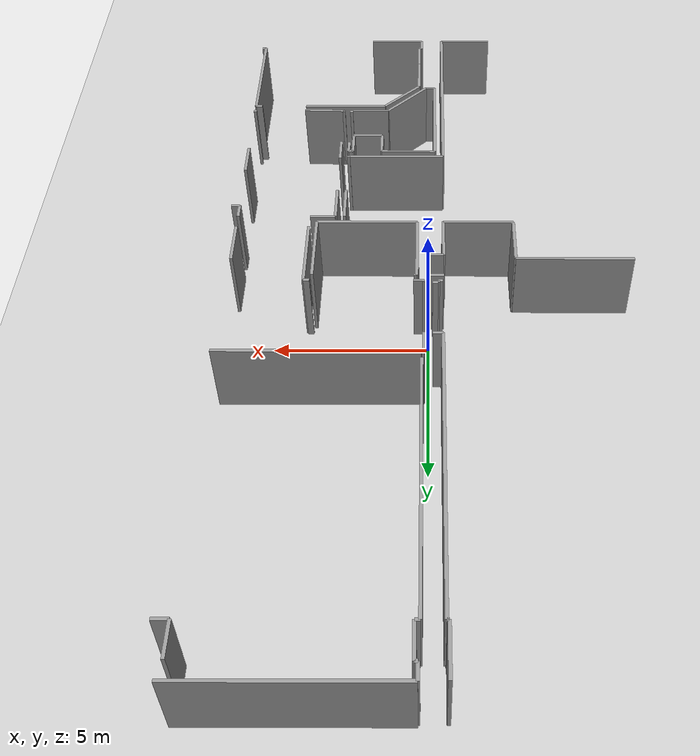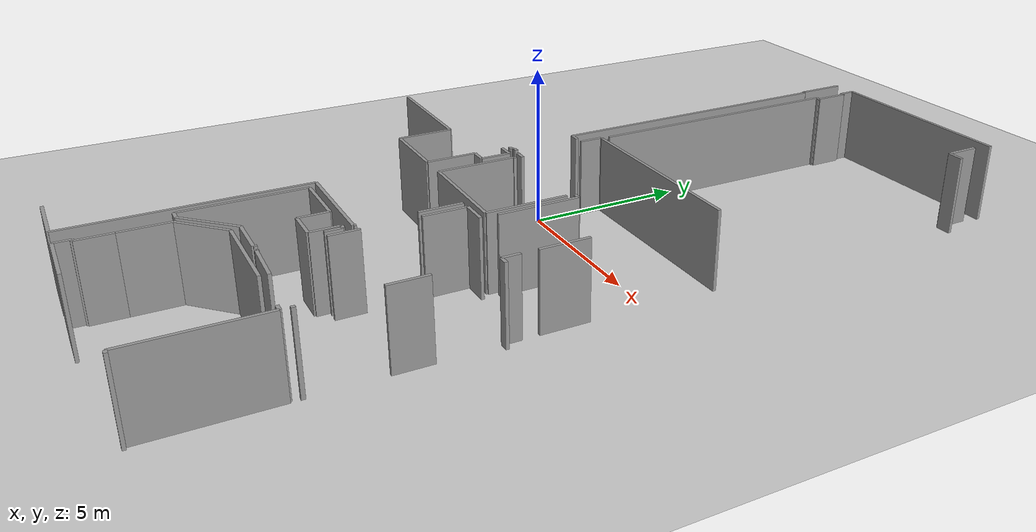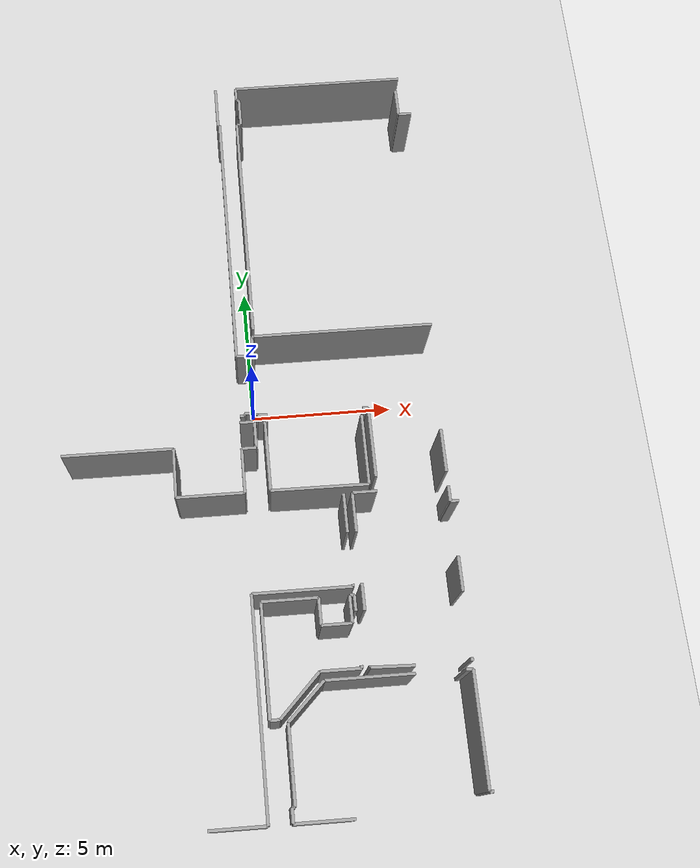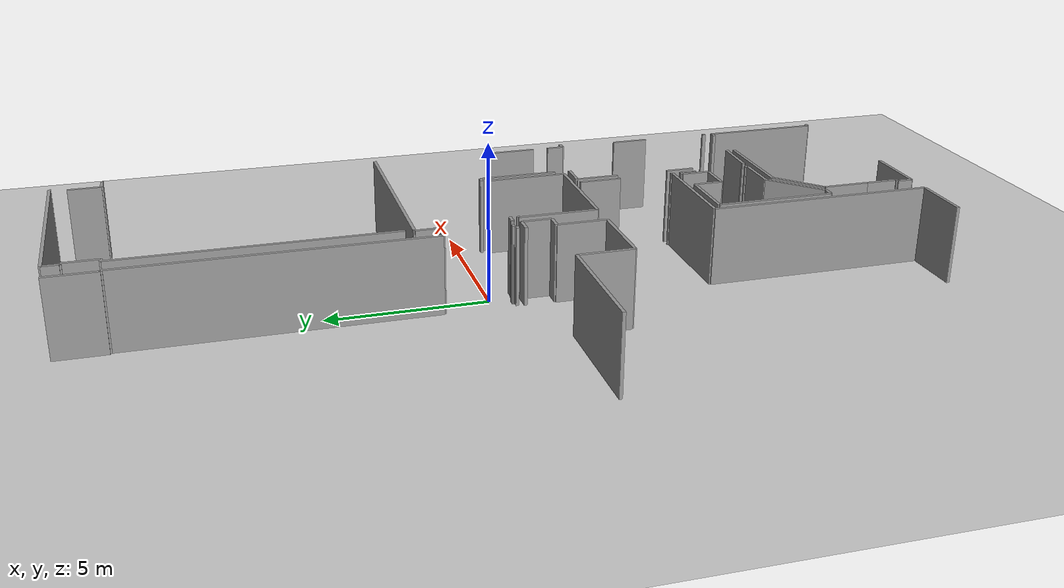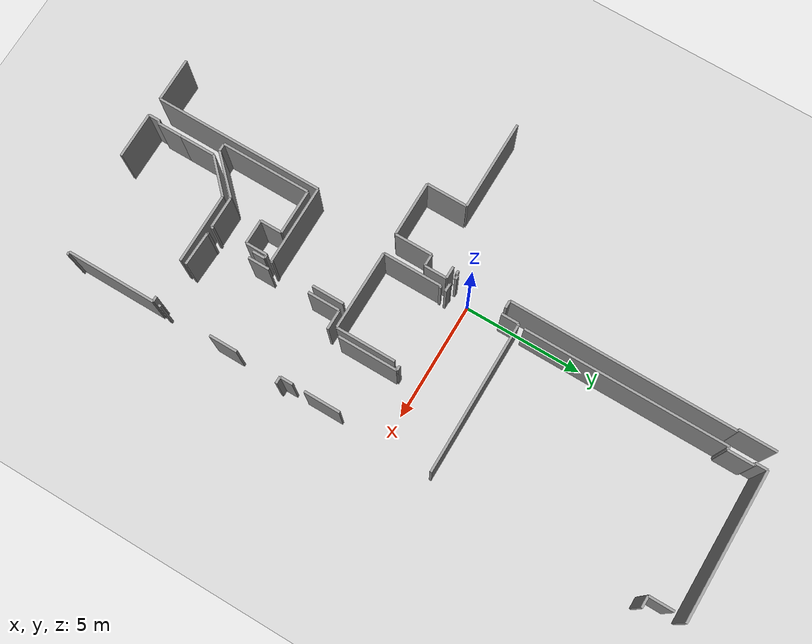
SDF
<sdf version="1.6">
 <world name="default">
  <model name="ground_plane">
   <static>1</static>
   <link name="link">
    <collision name="collision">
     <geometry><plane><normal>0 0 1</normal><size>100 100</size></plane></geometry>
     <surface><friction><ode><mu>100</mu><mu2>50</mu2></ode></friction></surface>
    </collision>
    <visual name="visual">
     <cast_shadows>0</cast_shadows>
     <geometry><plane><normal>0 0 1</normal><size>100 100</size></plane></geometry>
     <material>
      <script><uri>file://media/materials/scripts/gazebo.material</uri><name>Gazebo/Grey</name></script>
     </material>
    </visual>
   </link>
  </model>
  <model name="0510040942_A-40">
   <static>1</static>
   <link name="Wall_71">
    <collision name="Wall_71_Collision">
     <geometry><box><size>1.58557164064 0.1 2.5</size></box></geometry>
     <pose>0.792785820318 0 1.25 0 0 0</pose>
    </collision>
    <visual name="Wall_71_Visual">
     <pose>0.792785820318 0 1.25 0 0 0</pose>
     <geometry><box><size>1.58557164064 0.1 2.5</size></box></geometry>
     <material>
      <script><uri>file://media/materials/scripts/gazebo.material</uri><name>Gazebo/Grey</name></script>
      <ambient>1 1 1 1</ambient>
     </material>
    </visual>
    <pose>58.1242625322 -0.0121801134273 0 0 0 -1.57079632679</pose>
   </link>
   <link name="Wall_72">
    <collision name="Wall_72_Collision">
     <geometry><box><size>0.064326224038 0.1 2.5</size></box></geometry>
     <pose>0.032163112019 0 1.25 0 0 0</pose>
    </collision>
    <visual name="Wall_72_Visual">
     <pose>0.032163112019 0 1.25 0 0 0</pose>
     <geometry><box><size>0.064326224038 0.1 2.5</size></box></geometry>
     <material>
      <script><uri>file://media/materials/scripts/gazebo.material</uri><name>Gazebo/Grey</name></script>
      <ambient>1 1 1 1</ambient>
     </material>
    </visual>
    <pose>58.1242625322 -1.59775175406 0 0 0 0.0</pose>
   </link>
   <link name="Wall_73">
    <collision name="Wall_73_Collision">
     <geometry><box><size>9.51063856782 0.1 2.5</size></box></geometry>
     <pose>4.75531928391 0 1.25 0 0 0</pose>
    </collision>
    <visual name="Wall_73_Visual">
     <pose>4.75531928391 0 1.25 0 0 0</pose>
     <geometry><box><size>9.51063856782 0.1 2.5</size></box></geometry>
     <material>
      <script><uri>file://media/materials/scripts/gazebo.material</uri><name>Gazebo/Grey</name></script>
      <ambient>1 1 1 1</ambient>
     </material>
    </visual>
    <pose>58.1885887562 -1.59775175406 0 0 0 -1.57079632679</pose>
   </link>
   <link name="Wall_74">
    <collision name="Wall_74_Collision">
     <geometry><box><size>0.317190453836 0.1 2.5</size></box></geometry>
     <pose>0.158595226918 0 1.25 0 0 0</pose>
    </collision>
    <visual name="Wall_74_Visual">
     <pose>0.158595226918 0 1.25 0 0 0</pose>
     <geometry><box><size>0.317190453836 0.1 2.5</size></box></geometry>
     <material>
      <script><uri>file://media/materials/scripts/gazebo.material</uri><name>Gazebo/Grey</name></script>
      <ambient>1 1 1 1</ambient>
     </material>
    </visual>
    <pose>58.1885887562 -11.1083903219 0 0 0 0.0</pose>
   </link>
   <link name="Wall_75">
    <collision name="Wall_75_Collision">
     <geometry><box><size>0.178134158874 0.1 2.5</size></box></geometry>
     <pose>0.0890670794372 0 1.25 0 0 0</pose>
    </collision>
    <visual name="Wall_75_Visual">
     <pose>0.0890670794372 0 1.25 0 0 0</pose>
     <geometry><box><size>0.178134158874 0.1 2.5</size></box></geometry>
     <material>
      <script><uri>file://media/materials/scripts/gazebo.material</uri><name>Gazebo/Grey</name></script>
      <ambient>1 1 1 1</ambient>
     </material>
    </visual>
    <pose>58.5057792101 -13.2590684751 0 0 0 3.14159265359</pose>
   </link>
   <link name="Wall_76">
    <collision name="Wall_76_Collision">
     <geometry><box><size>0.0763794612837 0.1 2.5</size></box></geometry>
     <pose>0.0381897306419 0 1.25 0 0 0</pose>
    </collision>
    <visual name="Wall_76_Visual">
     <pose>0.0381897306419 0 1.25 0 0 0</pose>
     <geometry><box><size>0.0763794612837 0.1 2.5</size></box></geometry>
     <material>
      <script><uri>file://media/materials/scripts/gazebo.material</uri><name>Gazebo/Grey</name></script>
      <ambient>1 1 1 1</ambient>
     </material>
    </visual>
    <pose>58.3276450512 -13.2590684751 0 0 0 -1.57079632679</pose>
   </link>
   <link name="Wall_77">
    <collision name="Wall_77_Collision">
     <geometry><box><size>0.157326465103 0.1 2.5</size></box></geometry>
     <pose>0.0786632325513 0 1.25 0 0 0</pose>
    </collision>
    <visual name="Wall_77_Visual">
     <pose>0.0786632325513 0 1.25 0 0 0</pose>
     <geometry><box><size>0.157326465103 0.1 2.5</size></box></geometry>
     <material>
      <script><uri>file://media/materials/scripts/gazebo.material</uri><name>Gazebo/Grey</name></script>
      <ambient>1 1 1 1</ambient>
     </material>
    </visual>
    <pose>58.3276450512 -13.3354479364 0 0 0 3.14159265359</pose>
   </link>
   <link name="Wall_138">
    <collision name="Wall_138_Collision">
     <geometry><box><size>1.34691754317 0.1 2.5</size></box></geometry>
     <pose>0.673458771585 0 1.25 0 0 0</pose>
    </collision>
    <visual name="Wall_138_Visual">
     <pose>0.673458771585 0 1.25 0 0 0</pose>
     <geometry><box><size>1.34691754317 0.1 2.5</size></box></geometry>
     <material>
      <script><uri>file://media/materials/scripts/gazebo.material</uri><name>Gazebo/Grey</name></script>
      <ambient>1 1 1 1</ambient>
     </material>
    </visual>
    <pose>61.4458809648 -16.3547204283 0 0 0 -1.57079632679</pose>
   </link>
   <link name="Wall_139">
    <collision name="Wall_139_Collision">
     <geometry><box><size>0.0798051181852 0.1 2.5</size></box></geometry>
     <pose>0.0399025590926 0 1.25 0 0 0</pose>
    </collision>
    <visual name="Wall_139_Visual">
     <pose>0.0399025590926 0 1.25 0 0 0</pose>
     <geometry><box><size>0.0798051181852 0.1 2.5</size></box></geometry>
     <material>
      <script><uri>file://media/materials/scripts/gazebo.material</uri><name>Gazebo/Grey</name></script>
      <ambient>1 1 1 1</ambient>
     </material>
    </visual>
    <pose>61.4458809648 -19.445043582 0 0 0 -1.57079632679</pose>
   </link>
   <link name="Wall_140">
    <collision name="Wall_140_Collision">
     <geometry><box><size>3.32872349874 0.1 2.5</size></box></geometry>
     <pose>1.66436174937 0 1.25 0 0 0</pose>
    </collision>
    <visual name="Wall_140_Visual">
     <pose>1.66436174937 0 1.25 0 0 0</pose>
     <geometry><box><size>3.32872349874 0.1 2.5</size></box></geometry>
     <material>
      <script><uri>file://media/materials/scripts/gazebo.material</uri><name>Gazebo/Grey</name></script>
      <ambient>1 1 1 1</ambient>
     </material>
    </visual>
    <pose>61.4458809648 -19.5248487002 0 0 0 3.14159265359</pose>
   </link>
   <link name="Wall_141">
    <collision name="Wall_141_Collision">
     <geometry><box><size>7.1671086187 0.1 2.5</size></box></geometry>
     <pose>3.58355430935 0 1.25 0 0 0</pose>
    </collision>
    <visual name="Wall_141_Visual">
     <pose>3.58355430935 0 1.25 0 0 0</pose>
     <geometry><box><size>7.1671086187 0.1 2.5</size></box></geometry>
     <material>
      <script><uri>file://media/materials/scripts/gazebo.material</uri><name>Gazebo/Grey</name></script>
      <ambient>1 1 1 1</ambient>
     </material>
    </visual>
    <pose>58.117157466 -19.5248487002 0 0 0 -1.57079632679</pose>
   </link>
   <link name="Wall_142">
    <collision name="Wall_142_Collision">
     <geometry><box><size>1.84642906987 0.1 2.5</size></box></geometry>
     <pose>0.923214534935 0 1.25 0 0 0</pose>
    </collision>
    <visual name="Wall_142_Visual">
     <pose>0.923214534935 0 1.25 0 0 0</pose>
     <geometry><box><size>1.84642906987 0.1 2.5</size></box></geometry>
     <material>
      <script><uri>file://media/materials/scripts/gazebo.material</uri><name>Gazebo/Grey</name></script>
      <ambient>1 1 1 1</ambient>
     </material>
    </visual>
    <pose>58.117157466 -26.6919573189 0 0 0 3.14159265359</pose>
   </link>
   <link name="Wall_148">
    <collision name="Wall_148_Collision">
     <geometry><box><size>0.507758478501 0.1 2.5</size></box></geometry>
     <pose>0.25387923925 0 1.25 0 0 0</pose>
    </collision>
    <visual name="Wall_148_Visual">
     <pose>0.25387923925 0 1.25 0 0 0</pose>
     <geometry><box><size>0.507758478501 0.1 2.5</size></box></geometry>
     <material>
      <script><uri>file://media/materials/scripts/gazebo.material</uri><name>Gazebo/Grey</name></script>
      <ambient>1 1 1 1</ambient>
     </material>
    </visual>
    <pose>58.1350470076 -13.5748632909 0 0 0 0.0</pose>
   </link>
   <link name="Wall_149">
    <collision name="Wall_149_Collision">
     <geometry><box><size>0.937361229176 0.1 2.5</size></box></geometry>
     <pose>0.468680614588 0 1.25 0 0 0</pose>
    </collision>
    <visual name="Wall_149_Visual">
     <pose>0.468680614588 0 1.25 0 0 0</pose>
     <geometry><box><size>0.937361229176 0.1 2.5</size></box></geometry>
     <material>
      <script><uri>file://media/materials/scripts/gazebo.material</uri><name>Gazebo/Grey</name></script>
      <ambient>1 1 1 1</ambient>
     </material>
    </visual>
    <pose>58.6428054861 -13.5748632909 0 0 0 -1.57079632679</pose>
   </link>
   <link name="Wall_150">
    <collision name="Wall_150_Collision">
     <geometry><box><size>0.500526536153 0.1 2.5</size></box></geometry>
     <pose>0.250263268077 0 1.25 0 0 0</pose>
    </collision>
    <visual name="Wall_150_Visual">
     <pose>0.250263268077 0 1.25 0 0 0</pose>
     <geometry><box><size>0.500526536153 0.1 2.5</size></box></geometry>
     <material>
      <script><uri>file://media/materials/scripts/gazebo.material</uri><name>Gazebo/Grey</name></script>
      <ambient>1 1 1 1</ambient>
     </material>
    </visual>
    <pose>58.6428054861 -14.5122245201 0 0 0 3.14159265359</pose>
   </link>
   <link name="Wall_151">
    <collision name="Wall_151_Collision">
     <geometry><box><size>1.57060025121 0.1 2.5</size></box></geometry>
     <pose>0.785300125607 0 1.25 0 0 0</pose>
    </collision>
    <visual name="Wall_151_Visual">
     <pose>0.785300125607 0 1.25 0 0 0</pose>
     <geometry><box><size>1.57060025121 0.1 2.5</size></box></geometry>
     <material>
      <script><uri>file://media/materials/scripts/gazebo.material</uri><name>Gazebo/Grey</name></script>
      <ambient>1 1 1 1</ambient>
     </material>
    </visual>
    <pose>58.14227895 -14.5122245201 0 0 0 -1.57079632679</pose>
   </link>
   <link name="Wall_152">
    <collision name="Wall_152_Collision">
     <geometry><box><size>2.3189159699 0.1 2.5</size></box></geometry>
     <pose>1.15945798495 0 1.25 0 0 0</pose>
    </collision>
    <visual name="Wall_152_Visual">
     <pose>1.15945798495 0 1.25 0 0 0</pose>
     <geometry><box><size>2.3189159699 0.1 2.5</size></box></geometry>
     <material>
      <script><uri>file://media/materials/scripts/gazebo.material</uri><name>Gazebo/Grey</name></script>
      <ambient>1 1 1 1</ambient>
     </material>
    </visual>
    <pose>58.14227895 -16.0828247713 0 0 0 3.14159265359</pose>
   </link>
   <link name="Wall_153">
    <collision name="Wall_153_Collision">
     <geometry><box><size>1.73211363031 0.1 2.5</size></box></geometry>
     <pose>0.866056815154 0 1.25 0 0 0</pose>
    </collision>
    <visual name="Wall_153_Visual">
     <pose>0.866056815154 0 1.25 0 0 0</pose>
     <geometry><box><size>1.73211363031 0.1 2.5</size></box></geometry>
     <material>
      <script><uri>file://media/materials/scripts/gazebo.material</uri><name>Gazebo/Grey</name></script>
      <ambient>1 1 1 1</ambient>
     </material>
    </visual>
    <pose>55.8233629801 -16.0828247713 0 0 0 1.57079632679</pose>
   </link>
   <link name="Wall_154">
    <collision name="Wall_154_Collision">
     <geometry><box><size>3.82193797068 0.1 2.5</size></box></geometry>
     <pose>1.91096898534 0 1.25 0 0 0</pose>
    </collision>
    <visual name="Wall_154_Visual">
     <pose>1.91096898534 0 1.25 0 0 0</pose>
     <geometry><box><size>3.82193797068 0.1 2.5</size></box></geometry>
     <material>
      <script><uri>file://media/materials/scripts/gazebo.material</uri><name>Gazebo/Grey</name></script>
      <ambient>1 1 1 1</ambient>
     </material>
    </visual>
    <pose>55.8233629801 -14.350711141 0 0 0 3.13664630745</pose>
   </link>
   <link name="Wall_155">
    <collision name="Wall_155_Collision">
     <geometry><box><size>3.76809571539 0.1 2.5</size></box></geometry>
     <pose>1.8840478577 0 1.25 0 0 0</pose>
    </collision>
    <visual name="Wall_155_Visual">
     <pose>1.8840478577 0 1.25 0 0 0</pose>
     <geometry><box><size>3.76809571539 0.1 2.5</size></box></geometry>
     <material>
      <script><uri>file://media/materials/scripts/gazebo.material</uri><name>Gazebo/Grey</name></script>
      <ambient>1 1 1 1</ambient>
     </material>
    </visual>
    <pose>58.4070695408 -23.5705495007 0 0 0 1.57079632679</pose>
   </link>
   <link name="Wall_156">
    <collision name="Wall_156_Collision">
     <geometry><box><size>1.88309628633 0.1 2.5</size></box></geometry>
     <pose>0.941548143167 0 1.25 0 0 0</pose>
    </collision>
    <visual name="Wall_156_Visual">
     <pose>0.941548143167 0 1.25 0 0 0</pose>
     <geometry><box><size>1.88309628633 0.1 2.5</size></box></geometry>
     <material>
      <script><uri>file://media/materials/scripts/gazebo.material</uri><name>Gazebo/Grey</name></script>
      <ambient>1 1 1 1</ambient>
     </material>
    </visual>
    <pose>58.4070695408 -19.8024537854 0 0 0 0.0</pose>
   </link>
   <link name="Wall_157">
    <collision name="Wall_157_Collision">
     <geometry><box><size>0.913001002322 0.1 2.5</size></box></geometry>
     <pose>0.456500501161 0 1.25 0 0 0</pose>
    </collision>
    <visual name="Wall_157_Visual">
     <pose>0.456500501161 0 1.25 0 0 0</pose>
     <geometry><box><size>0.913001002322 0.1 2.5</size></box></geometry>
     <material>
      <script><uri>file://media/materials/scripts/gazebo.material</uri><name>Gazebo/Grey</name></script>
      <ambient>1 1 1 1</ambient>
     </material>
    </visual>
    <pose>60.2901658272 -19.8024537854 0 0 0 -1.57079632679</pose>
   </link>
   <link name="Wall_158">
    <collision name="Wall_158_Collision">
     <geometry><box><size>1.015516957 0.1 2.5</size></box></geometry>
     <pose>0.507758478501 0 1.25 0 0 0</pose>
    </collision>
    <visual name="Wall_158_Visual">
     <pose>0.507758478501 0 1.25 0 0 0</pose>
     <geometry><box><size>1.015516957 0.1 2.5</size></box></geometry>
     <material>
      <script><uri>file://media/materials/scripts/gazebo.material</uri><name>Gazebo/Grey</name></script>
      <ambient>1 1 1 1</ambient>
     </material>
    </visual>
    <pose>60.2901658272 -20.7154547877 0 0 0 0.0</pose>
   </link>
   <link name="Wall_159">
    <collision name="Wall_159_Collision">
     <geometry><box><size>0.908306583605 0.1 2.5</size></box></geometry>
     <pose>0.454153291803 0 1.25 0 0 0</pose>
    </collision>
    <visual name="Wall_159_Visual">
     <pose>0.454153291803 0 1.25 0 0 0</pose>
     <geometry><box><size>0.908306583605 0.1 2.5</size></box></geometry>
     <material>
      <script><uri>file://media/materials/scripts/gazebo.material</uri><name>Gazebo/Grey</name></script>
      <ambient>1 1 1 1</ambient>
     </material>
    </visual>
    <pose>61.3056827842 -20.7154547877 0 0 0 1.57079632679</pose>
   </link>
   <link name="Wall_160">
    <collision name="Wall_160_Collision">
     <geometry><box><size>0.151490160752 0.1 2.5</size></box></geometry>
     <pose>0.0757450803761 0 1.25 0 0 0</pose>
    </collision>
    <visual name="Wall_160_Visual">
     <pose>0.0757450803761 0 1.25 0 0 0</pose>
     <geometry><box><size>0.151490160752 0.1 2.5</size></box></geometry>
     <material>
      <script><uri>file://media/materials/scripts/gazebo.material</uri><name>Gazebo/Grey</name></script>
      <ambient>1 1 1 1</ambient>
     </material>
    </visual>
    <pose>61.3056827842 -19.8071482041 0 0 0 0.0</pose>
   </link>
   <link name="Wall_161">
    <collision name="Wall_161_Collision">
     <geometry><box><size>0.523618001193 0.1 2.5</size></box></geometry>
     <pose>0.261809000596 0 1.25 0 0 0</pose>
    </collision>
    <visual name="Wall_161_Visual">
     <pose>0.261809000596 0 1.25 0 0 0</pose>
     <geometry><box><size>0.523618001193 0.1 2.5</size></box></geometry>
     <material>
      <script><uri>file://media/materials/scripts/gazebo.material</uri><name>Gazebo/Grey</name></script>
      <ambient>1 1 1 1</ambient>
     </material>
    </visual>
    <pose>61.4571729449 -19.8071482041 0 0 0 -1.57079632679</pose>
   </link>
   <link name="Wall_162">
    <collision name="Wall_162_Collision">
     <geometry><box><size>0.0942690028801 0.1 2.5</size></box></geometry>
     <pose>0.04713450144 0 1.25 0 0 0</pose>
    </collision>
    <visual name="Wall_162_Visual">
     <pose>0.04713450144 0 1.25 0 0 0</pose>
     <geometry><box><size>0.0942690028801 0.1 2.5</size></box></geometry>
     <material>
      <script><uri>file://media/materials/scripts/gazebo.material</uri><name>Gazebo/Grey</name></script>
      <ambient>1 1 1 1</ambient>
     </material>
    </visual>
    <pose>61.4571729449 -22.0783587297 0 0 0 -1.57079632679</pose>
   </link>
   <link name="Wall_163">
    <collision name="Wall_163_Collision">
     <geometry><box><size>1.34171561973 0.1 2.5</size></box></geometry>
     <pose>0.670857809863 0 1.25 0 0 0</pose>
    </collision>
    <visual name="Wall_163_Visual">
     <pose>0.670857809863 0 1.25 0 0 0</pose>
     <geometry><box><size>1.34171561973 0.1 2.5</size></box></geometry>
     <material>
      <script><uri>file://media/materials/scripts/gazebo.material</uri><name>Gazebo/Grey</name></script>
      <ambient>1 1 1 1</ambient>
     </material>
    </visual>
    <pose>61.4571729449 -22.1726277326 0 0 0 3.14159265359</pose>
   </link>
   <link name="Wall_164">
    <collision name="Wall_164_Collision">
     <geometry><box><size>1.96810243234 0.1 2.5</size></box></geometry>
     <pose>0.984051216168 0 1.25 0 0 0</pose>
    </collision>
    <visual name="Wall_164_Visual">
     <pose>0.984051216168 0 1.25 0 0 0</pose>
     <geometry><box><size>1.96810243234 0.1 2.5</size></box></geometry>
     <material>
      <script><uri>file://media/materials/scripts/gazebo.material</uri><name>Gazebo/Grey</name></script>
      <ambient>1 1 1 1</ambient>
     </material>
    </visual>
    <pose>60.1154573252 -22.1726277326 0 0 0 -2.35122575687</pose>
   </link>
   <link name="Wall_165">
    <collision name="Wall_165_Collision">
     <geometry><box><size>0.323661760792 0.1 2.5</size></box></geometry>
     <pose>0.161830880396 0 1.25 0 0 0</pose>
    </collision>
    <visual name="Wall_165_Visual">
     <pose>0.161830880396 0 1.25 0 0 0</pose>
     <geometry><box><size>0.323661760792 0.1 2.5</size></box></geometry>
     <material>
      <script><uri>file://media/materials/scripts/gazebo.material</uri><name>Gazebo/Grey</name></script>
      <ambient>1 1 1 1</ambient>
     </material>
    </visual>
    <pose>58.7307306799 -23.5711838816 0 0 0 3.13963264042</pose>
   </link>
   <link name="Wall_166">
    <collision name="Wall_166_Collision">
     <geometry><box><size>0.0630574622226 0.1 2.5</size></box></geometry>
     <pose>0.0315287311113 0 1.25 0 0 0</pose>
    </collision>
    <visual name="Wall_166_Visual">
     <pose>0.0315287311113 0 1.25 0 0 0</pose>
     <geometry><box><size>0.0630574622226 0.1 2.5</size></box></geometry>
     <material>
      <script><uri>file://media/materials/scripts/gazebo.material</uri><name>Gazebo/Grey</name></script>
      <ambient>1 1 1 1</ambient>
     </material>
    </visual>
    <pose>61.740994963 -22.1662839235 0 0 0 1.57079632679</pose>
   </link>
   <link name="Wall_167">
    <collision name="Wall_167_Collision">
     <geometry><box><size>0.906784069427 0.1 2.5</size></box></geometry>
     <pose>0.453392034713 0 1.25 0 0 0</pose>
    </collision>
    <visual name="Wall_167_Visual">
     <pose>0.453392034713 0 1.25 0 0 0</pose>
     <geometry><box><size>0.906784069427 0.1 2.5</size></box></geometry>
     <material>
      <script><uri>file://media/materials/scripts/gazebo.material</uri><name>Gazebo/Grey</name></script>
      <ambient>1 1 1 1</ambient>
     </material>
    </visual>
    <pose>61.740994963 -20.3373637667 0 0 0 1.57079632679</pose>
   </link>
   <link name="Wall_168">
    <collision name="Wall_168_Collision">
     <geometry><box><size>1.35617950442 0.1 2.5</size></box></geometry>
     <pose>0.678089752211 0 1.25 0 0 0</pose>
    </collision>
    <visual name="Wall_168_Visual">
     <pose>0.678089752211 0 1.25 0 0 0</pose>
     <geometry><box><size>1.35617950442 0.1 2.5</size></box></geometry>
     <material>
      <script><uri>file://media/materials/scripts/gazebo.material</uri><name>Gazebo/Grey</name></script>
      <ambient>1 1 1 1</ambient>
     </material>
    </visual>
    <pose>61.740994963 -17.7065861426 0 0 0 1.57079632679</pose>
   </link>
   <link name="Wall_169">
    <collision name="Wall_169_Collision">
     <geometry><box><size>0.832688379411 0.1 2.5</size></box></geometry>
     <pose>0.416344189705 0 1.25 0 0 0</pose>
    </collision>
    <visual name="Wall_169_Visual">
     <pose>0.416344189705 0 1.25 0 0 0</pose>
     <geometry><box><size>0.832688379411 0.1 2.5</size></box></geometry>
     <material>
      <script><uri>file://media/materials/scripts/gazebo.material</uri><name>Gazebo/Grey</name></script>
      <ambient>1 1 1 1</ambient>
     </material>
    </visual>
    <pose>61.740994963 -16.3504066382 0 0 0 0.0</pose>
   </link>
   <link name="Wall_170">
    <collision name="Wall_170_Collision">
     <geometry><box><size>0.54328380933 0.1 2.5</size></box></geometry>
     <pose>0.271641904665 0 1.25 0 0 0</pose>
    </collision>
    <visual name="Wall_170_Visual">
     <pose>0.271641904665 0 1.25 0 0 0</pose>
     <geometry><box><size>0.54328380933 0.1 2.5</size></box></geometry>
     <material>
      <script><uri>file://media/materials/scripts/gazebo.material</uri><name>Gazebo/Grey</name></script>
      <ambient>1 1 1 1</ambient>
     </material>
    </visual>
    <pose>64.9862339343 -16.3504066382 0 0 0 -1.57079632679</pose>
   </link>
   <link name="Wall_171">
    <collision name="Wall_171_Collision">
     <geometry><box><size>0.286232665542 0.1 2.5</size></box></geometry>
     <pose>0.143116332771 0 1.25 0 0 0</pose>
    </collision>
    <visual name="Wall_171_Visual">
     <pose>0.143116332771 0 1.25 0 0 0</pose>
     <geometry><box><size>0.286232665542 0.1 2.5</size></box></geometry>
     <material>
      <script><uri>file://media/materials/scripts/gazebo.material</uri><name>Gazebo/Grey</name></script>
      <ambient>1 1 1 1</ambient>
     </material>
    </visual>
    <pose>64.9862339343 -16.8936904475 0 0 0 0.0</pose>
   </link>
   <link name="Wall_173">
    <collision name="Wall_173_Collision">
     <geometry><box><size>1.18578479262 0.1 2.5</size></box></geometry>
     <pose>0.59289239631 0 1.25 0 0 0</pose>
    </collision>
    <visual name="Wall_173_Visual">
     <pose>0.59289239631 0 1.25 0 0 0</pose>
     <geometry><box><size>1.18578479262 0.1 2.5</size></box></geometry>
     <material>
      <script><uri>file://media/materials/scripts/gazebo.material</uri><name>Gazebo/Grey</name></script>
      <ambient>1 1 1 1</ambient>
     </material>
    </visual>
    <pose>65.0022203332 -18.7663828869 0 0 0 -1.57079632679</pose>
   </link>
   <link name="Wall_174">
    <collision name="Wall_174_Collision">
     <geometry><box><size>0.116726087012 0.1 2.5</size></box></geometry>
     <pose>0.0583630435058 0 1.25 0 0 0</pose>
    </collision>
    <visual name="Wall_174_Visual">
     <pose>0.0583630435058 0 1.25 0 0 0</pose>
     <geometry><box><size>0.116726087012 0.1 2.5</size></box></geometry>
     <material>
      <script><uri>file://media/materials/scripts/gazebo.material</uri><name>Gazebo/Grey</name></script>
      <ambient>1 1 1 1</ambient>
     </material>
    </visual>
    <pose>65.0022203332 -22.0939645 0 0 0 -1.57079632679</pose>
   </link>
   <link name="Wall_176">
    <collision name="Wall_176_Collision">
     <geometry><box><size>1.42918897938 0.1 2.5</size></box></geometry>
     <pose>0.714594489688 0 1.25 0 0 0</pose>
    </collision>
    <visual name="Wall_176_Visual">
     <pose>0.714594489688 0 1.25 0 0 0</pose>
     <geometry><box><size>1.42918897938 0.1 2.5</size></box></geometry>
     <material>
      <script><uri>file://media/materials/scripts/gazebo.material</uri><name>Gazebo/Grey</name></script>
      <ambient>1 1 1 1</ambient>
     </material>
    </visual>
    <pose>63.1694938909 -22.2106905871 0 0 0 3.11051641911</pose>
   </link>
   <link name="Wall_177">
    <collision name="Wall_177_Collision">
     <geometry><box><size>1.47607749597 0.1 2.5</size></box></geometry>
     <pose>0.738038747986 0 1.25 0 0 0</pose>
    </collision>
    <visual name="Wall_177_Visual">
     <pose>0.738038747986 0 1.25 0 0 0</pose>
     <geometry><box><size>1.47607749597 0.1 2.5</size></box></geometry>
     <material>
      <script><uri>file://media/materials/scripts/gazebo.material</uri><name>Gazebo/Grey</name></script>
      <ambient>1 1 1 1</ambient>
     </material>
    </visual>
    <pose>58.9843561668 -25.1563748937 0 0 0 1.57079632679</pose>
   </link>
   <link name="Wall_178">
    <collision name="Wall_178_Collision">
     <geometry><box><size>1.74452035823 0.1 2.5</size></box></geometry>
     <pose>0.872260179113 0 1.25 0 0 0</pose>
    </collision>
    <visual name="Wall_178_Visual">
     <pose>0.872260179113 0 1.25 0 0 0</pose>
     <geometry><box><size>1.74452035823 0.1 2.5</size></box></geometry>
     <material>
      <script><uri>file://media/materials/scripts/gazebo.material</uri><name>Gazebo/Grey</name></script>
      <ambient>1 1 1 1</ambient>
     </material>
    </visual>
    <pose>58.9843561668 -23.6802973978 0 0 0 0.774598336438</pose>
   </link>
   <link name="Wall_179">
    <collision name="Wall_179_Collision">
     <geometry><box><size>2.9208165751 0.1 2.5</size></box></geometry>
     <pose>1.46040828755 0 1.25 0 0 0</pose>
    </collision>
    <visual name="Wall_179_Visual">
     <pose>1.46040828755 0 1.25 0 0 0</pose>
     <geometry><box><size>2.9208165751 0.1 2.5</size></box></geometry>
     <material>
      <script><uri>file://media/materials/scripts/gazebo.material</uri><name>Gazebo/Grey</name></script>
      <ambient>1 1 1 1</ambient>
     </material>
    </visual>
    <pose>60.2311684028 -22.46012916 0 0 0 0.0</pose>
   </link>
   <link name="Wall_180">
    <collision name="Wall_180_Collision">
     <geometry><box><size>0.224951469861 0.1 2.5</size></box></geometry>
     <pose>0.11247573493 0 1.25 0 0 0</pose>
    </collision>
    <visual name="Wall_180_Visual">
     <pose>0.11247573493 0 1.25 0 0 0</pose>
     <geometry><box><size>0.224951469861 0.1 2.5</size></box></geometry>
     <material>
      <script><uri>file://media/materials/scripts/gazebo.material</uri><name>Gazebo/Grey</name></script>
      <ambient>1 1 1 1</ambient>
     </material>
    </visual>
    <pose>64.7699100448 -22.46012916 0 0 0 0.0</pose>
   </link>
   <link name="Wall_181">
    <collision name="Wall_181_Collision">
     <geometry><box><size>3.74386236472 0.1 2.5</size></box></geometry>
     <pose>1.87193118236 0 1.25 0 0 0</pose>
    </collision>
    <visual name="Wall_181_Visual">
     <pose>1.87193118236 0 1.25 0 0 0</pose>
     <geometry><box><size>3.74386236472 0.1 2.5</size></box></geometry>
     <material>
      <script><uri>file://media/materials/scripts/gazebo.material</uri><name>Gazebo/Grey</name></script>
      <ambient>1 1 1 1</ambient>
     </material>
    </visual>
    <pose>64.9948615146 -22.46012916 0 0 0 -1.57079632679</pose>
   </link>
   <link name="Wall_182">
    <collision name="Wall_182_Collision">
     <geometry><box><size>0.137153152239 0.1 2.5</size></box></geometry>
     <pose>0.0685765761194 0 1.25 0 0 0</pose>
    </collision>
    <visual name="Wall_182_Visual">
     <pose>0.0685765761194 0 1.25 0 0 0</pose>
     <geometry><box><size>0.137153152239 0.1 2.5</size></box></geometry>
     <material>
      <script><uri>file://media/materials/scripts/gazebo.material</uri><name>Gazebo/Grey</name></script>
      <ambient>1 1 1 1</ambient>
     </material>
    </visual>
    <pose>64.9948615146 -26.2039915247 0 0 0 0.0</pose>
   </link>
   <link name="Wall_185">
    <collision name="Wall_185_Collision">
     <geometry><box><size>1.93156298768 0.1 2.5</size></box></geometry>
     <pose>0.96578149384 0 1.25 0 0 0</pose>
    </collision>
    <visual name="Wall_185_Visual">
     <pose>0.96578149384 0 1.25 0 0 0</pose>
     <geometry><box><size>1.93156298768 0.1 2.5</size></box></geometry>
     <material>
      <script><uri>file://media/materials/scripts/gazebo.material</uri><name>Gazebo/Grey</name></script>
      <ambient>1 1 1 1</ambient>
     </material>
    </visual>
    <pose>60.8206351422 -26.6872629001 0 0 0 3.14159265359</pose>
   </link>
   <link name="Wall_186">
    <collision name="Wall_186_Collision">
     <geometry><box><size>0.483271375465 0.1 2.5</size></box></geometry>
     <pose>0.241635687732 0 1.25 0 0 0</pose>
    </collision>
    <visual name="Wall_186_Visual">
     <pose>0.241635687732 0 1.25 0 0 0</pose>
     <geometry><box><size>0.483271375465 0.1 2.5</size></box></geometry>
     <material>
      <script><uri>file://media/materials/scripts/gazebo.material</uri><name>Gazebo/Grey</name></script>
      <ambient>1 1 1 1</ambient>
     </material>
    </visual>
    <pose>58.8890721545 -26.6872629001 0 0 0 1.57079632679</pose>
   </link>
   <link name="Wall_187">
    <collision name="Wall_187_Collision">
     <geometry><box><size>0.0973140312369 0.1 2.5</size></box></geometry>
     <pose>0.0486570156185 0 1.25 0 0 0</pose>
    </collision>
    <visual name="Wall_187_Visual">
     <pose>0.0486570156185 0 1.25 0 0 0</pose>
     <geometry><box><size>0.0973140312369 0.1 2.5</size></box></geometry>
     <material>
      <script><uri>file://media/materials/scripts/gazebo.material</uri><name>Gazebo/Grey</name></script>
      <ambient>1 1 1 1</ambient>
     </material>
    </visual>
    <pose>58.8890721545 -26.2039915247 0 0 0 0.0</pose>
   </link>
   <link name="Wall_188">
    <collision name="Wall_188_Collision">
     <geometry><box><size>1.04761859776 0.1 2.5</size></box></geometry>
     <pose>0.523809298881 0 1.25 0 0 0</pose>
    </collision>
    <visual name="Wall_188_Visual">
     <pose>0.523809298881 0 1.25 0 0 0</pose>
     <geometry><box><size>1.04761859776 0.1 2.5</size></box></geometry>
     <material>
      <script><uri>file://media/materials/scripts/gazebo.material</uri><name>Gazebo/Grey</name></script>
      <ambient>1 1 1 1</ambient>
     </material>
    </visual>
    <pose>58.9863861857 -26.2039915247 0 0 0 1.57273407416</pose>
   </link>
   <link name="Wall_395">
    <collision name="Wall_395_Collision">
     <geometry><box><size>8.5199893424 0.1 2.5</size></box></geometry>
     <pose>4.2599946712 0 1.25 0 0 0</pose>
    </collision>
    <visual name="Wall_395_Visual">
     <pose>4.2599946712 0 1.25 0 0 0</pose>
     <geometry><box><size>8.5199893424 0.1 2.5</size></box></geometry>
     <material>
      <script><uri>file://media/materials/scripts/gazebo.material</uri><name>Gazebo/Grey</name></script>
      <ambient>1 1 1 1</ambient>
     </material>
    </visual>
    <pose>58.840478577 -10.122308639 0 0 0 1.57079632679</pose>
   </link>
   <link name="Wall_396">
    <collision name="Wall_396_Collision">
     <geometry><box><size>0.150221398937 0.1 2.5</size></box></geometry>
     <pose>0.0751106994684 0 1.25 0 0 0</pose>
    </collision>
    <visual name="Wall_396_Visual">
     <pose>0.0751106994684 0 1.25 0 0 0</pose>
     <geometry><box><size>0.150221398937 0.1 2.5</size></box></geometry>
     <material>
      <script><uri>file://media/materials/scripts/gazebo.material</uri><name>Gazebo/Grey</name></script>
      <ambient>1 1 1 1</ambient>
     </material>
    </visual>
    <pose>58.840478577 -1.6023192966 0 0 0 0.0</pose>
   </link>
   <link name="Wall_397">
    <collision name="Wall_397_Collision">
     <geometry><box><size>1.09126203738 0.1 2.5</size></box></geometry>
     <pose>0.545631018689 0 1.25 0 0 0</pose>
    </collision>
    <visual name="Wall_397_Visual">
     <pose>0.545631018689 0 1.25 0 0 0</pose>
     <geometry><box><size>1.09126203738 0.1 2.5</size></box></geometry>
     <material>
      <script><uri>file://media/materials/scripts/gazebo.material</uri><name>Gazebo/Grey</name></script>
      <ambient>1 1 1 1</ambient>
     </material>
    </visual>
    <pose>58.9906999759 -1.6023192966 0 0 0 1.57079632679</pose>
   </link>
   <link name="Wall_398">
    <collision name="Wall_398_Collision">
     <geometry><box><size>0.0946496314247 0.1 2.5</size></box></geometry>
     <pose>0.0473248157123 0 1.25 0 0 0</pose>
    </collision>
    <visual name="Wall_398_Visual">
     <pose>0.0473248157123 0 1.25 0 0 0</pose>
     <geometry><box><size>0.0946496314247 0.1 2.5</size></box></geometry>
     <material>
      <script><uri>file://media/materials/scripts/gazebo.material</uri><name>Gazebo/Grey</name></script>
      <ambient>1 1 1 1</ambient>
     </material>
    </visual>
    <pose>58.9906999759 -0.511057259221 0 0 0 3.14159265359</pose>
   </link>
   <link name="Wall_399">
    <collision name="Wall_399_Collision">
     <geometry><box><size>0.504713450144 0.1 2.5</size></box></geometry>
     <pose>0.252356725072 0 1.25 0 0 0</pose>
    </collision>
    <visual name="Wall_399_Visual">
     <pose>0.252356725072 0 1.25 0 0 0</pose>
     <geometry><box><size>0.504713450144 0.1 2.5</size></box></geometry>
     <material>
      <script><uri>file://media/materials/scripts/gazebo.material</uri><name>Gazebo/Grey</name></script>
      <ambient>1 1 1 1</ambient>
     </material>
    </visual>
    <pose>58.8960503445 -0.511057259221 0 0 0 1.57079632679</pose>
   </link>
   <link name="Wall_400">
    <collision name="Wall_400_Collision">
     <geometry><box><size>6.25372698783 0.1 2.5</size></box></geometry>
     <pose>3.12686349392 0 1.25 0 0 0</pose>
    </collision>
    <visual name="Wall_400_Visual">
     <pose>3.12686349392 0 1.25 0 0 0</pose>
     <geometry><box><size>6.25372698783 0.1 2.5</size></box></geometry>
     <material>
      <script><uri>file://media/materials/scripts/gazebo.material</uri><name>Gazebo/Grey</name></script>
      <ambient>1 1 1 1</ambient>
     </material>
    </visual>
    <pose>58.8960503445 -0.00634380907672 0 0 0 0.0</pose>
   </link>
   <link name="Wall_403">
    <collision name="Wall_403_Collision">
     <geometry><box><size>1.05916236345 0.1 2.5</size></box></geometry>
     <pose>0.529581181725 0 1.25 0 0 0</pose>
    </collision>
    <visual name="Wall_403_Visual">
     <pose>0.529581181725 0 1.25 0 0 0</pose>
     <geometry><box><size>1.05916236345 0.1 2.5</size></box></geometry>
     <material>
      <script><uri>file://media/materials/scripts/gazebo.material</uri><name>Gazebo/Grey</name></script>
      <ambient>1 1 1 1</ambient>
     </material>
    </visual>
    <pose>64.9902939721 -0.540619409518 0 0 0 -1.57079632679</pose>
   </link>
   <link name="Wall_404">
    <collision name="Wall_404_Collision">
     <geometry><box><size>0.485935775277 0.1 2.5</size></box></geometry>
     <pose>0.242967887638 0 1.25 0 0 0</pose>
    </collision>
    <visual name="Wall_404_Visual">
     <pose>0.242967887638 0 1.25 0 0 0</pose>
     <geometry><box><size>0.485935775277 0.1 2.5</size></box></geometry>
     <material>
      <script><uri>file://media/materials/scripts/gazebo.material</uri><name>Gazebo/Grey</name></script>
      <ambient>1 1 1 1</ambient>
     </material>
    </visual>
    <pose>64.9902939721 -1.59978177297 0 0 0 0.0</pose>
   </link>
   <link name="Wall_420">
    <collision name="Wall_420_Collision">
     <geometry><box><size>6.30853749826 0.1 2.5</size></box></geometry>
     <pose>3.15426874913 0 1.25 0 0 0</pose>
    </collision>
    <visual name="Wall_420_Visual">
     <pose>3.15426874913 0 1.25 0 0 0</pose>
     <geometry><box><size>6.30853749826 0.1 2.5</size></box></geometry>
     <material>
      <script><uri>file://media/materials/scripts/gazebo.material</uri><name>Gazebo/Grey</name></script>
      <ambient>1 1 1 1</ambient>
     </material>
    </visual>
    <pose>58.8541812046 -10.382277935 0 0 0 0.0</pose>
   </link>
   <link name="Wall_468">
    <collision name="Wall_468_Collision">
     <geometry><box><size>1.52111854042 0.1 2.5</size></box></geometry>
     <pose>0.760559270208 0 1.25 0 0 0</pose>
    </collision>
    <visual name="Wall_468_Visual">
     <pose>0.760559270208 0 1.25 0 0 0</pose>
     <geometry><box><size>1.52111854042 0.1 2.5</size></box></geometry>
     <material>
      <script><uri>file://media/materials/scripts/gazebo.material</uri><name>Gazebo/Grey</name></script>
      <ambient>1 1 1 1</ambient>
     </material>
    </visual>
    <pose>64.9896595912 -14.3309184567 0 0 0 -1.57079632679</pose>
   </link>
   <link name="Wall_469">
    <collision name="Wall_469_Collision">
     <geometry><box><size>2.50225205222 0.1 2.5</size></box></geometry>
     <pose>1.25112602611 0 1.25 0 0 0</pose>
    </collision>
    <visual name="Wall_469_Visual">
     <pose>1.25112602611 0 1.25 0 0 0</pose>
     <geometry><box><size>2.50225205222 0.1 2.5</size></box></geometry>
     <material>
      <script><uri>file://media/materials/scripts/gazebo.material</uri><name>Gazebo/Grey</name></script>
      <ambient>1 1 1 1</ambient>
     </material>
    </visual>
    <pose>62.5911922555 -15.8520369971 0 0 0 1.57079632679</pose>
   </link>
   <link name="Wall_470">
    <collision name="Wall_470_Collision">
     <geometry><box><size>0.194881814837 0.1 2.5</size></box></geometry>
     <pose>0.0974409074185 0 1.25 0 0 0</pose>
    </collision>
    <visual name="Wall_470_Visual">
     <pose>0.0974409074185 0 1.25 0 0 0</pose>
     <geometry><box><size>0.194881814837 0.1 2.5</size></box></geometry>
     <material>
      <script><uri>file://media/materials/scripts/gazebo.material</uri><name>Gazebo/Grey</name></script>
      <ambient>1 1 1 1</ambient>
     </material>
    </visual>
    <pose>62.5911922555 -13.3497849449 0 0 0 3.14159265359</pose>
   </link>
   <link name="Wall_471">
    <collision name="Wall_471_Collision">
     <geometry><box><size>0.333176852709 0.1 2.5</size></box></geometry>
     <pose>0.166588426355 0 1.25 0 0 0</pose>
    </collision>
    <visual name="Wall_471_Visual">
     <pose>0.166588426355 0 1.25 0 0 0</pose>
     <geometry><box><size>0.333176852709 0.1 2.5</size></box></geometry>
     <material>
      <script><uri>file://media/materials/scripts/gazebo.material</uri><name>Gazebo/Grey</name></script>
      <ambient>1 1 1 1</ambient>
     </material>
    </visual>
    <pose>59.1092023294 -13.3497849449 0 0 0 3.14159265359</pose>
   </link>
   <link name="Wall_472">
    <collision name="Wall_472_Collision">
     <geometry><box><size>0.0668637476686 0.1 2.5</size></box></geometry>
     <pose>0.0334318738343 0 1.25 0 0 0</pose>
    </collision>
    <visual name="Wall_472_Visual">
     <pose>0.0334318738343 0 1.25 0 0 0</pose>
     <geometry><box><size>0.0668637476686 0.1 2.5</size></box></geometry>
     <material>
      <script><uri>file://media/materials/scripts/gazebo.material</uri><name>Gazebo/Grey</name></script>
      <ambient>1 1 1 1</ambient>
     </material>
    </visual>
    <pose>58.7760254767 -13.3497849449 0 0 0 1.57079632679</pose>
   </link>
   <link name="Wall_473">
    <collision name="Wall_473_Collision">
     <geometry><box><size>0.731694938909 0.1 2.5</size></box></geometry>
     <pose>0.365847469455 0 1.25 0 0 0</pose>
    </collision>
    <visual name="Wall_473_Visual">
     <pose>0.365847469455 0 1.25 0 0 0</pose>
     <geometry><box><size>0.731694938909 0.1 2.5</size></box></geometry>
     <material>
      <script><uri>file://media/materials/scripts/gazebo.material</uri><name>Gazebo/Grey</name></script>
      <ambient>1 1 1 1</ambient>
     </material>
    </visual>
    <pose>58.7760254767 -11.1272948729 0 0 0 1.57079632679</pose>
   </link>
   <link name="Wall_474">
    <collision name="Wall_474_Collision">
     <geometry><box><size>0.0792829959756 0.1 2.5</size></box></geometry>
     <pose>0.0396414979878 0 1.25 0 0 0</pose>
    </collision>
    <visual name="Wall_474_Visual">
     <pose>0.0396414979878 0 1.25 0 0 0</pose>
     <geometry><box><size>0.0792829959756 0.1 2.5</size></box></geometry>
     <material>
      <script><uri>file://media/materials/scripts/gazebo.material</uri><name>Gazebo/Grey</name></script>
      <ambient>1 1 1 1</ambient>
     </material>
    </visual>
    <pose>58.7760254767 -10.395599934 0 0 0 0.168831902011</pose>
   </link>
   <link name="Wall_475">
    <collision name="Wall_475_Collision">
     <geometry><box><size>2.48068310136 0.1 2.5</size></box></geometry>
     <pose>1.24034155068 0 1.25 0 0 0</pose>
    </collision>
    <visual name="Wall_475_Visual">
     <pose>1.24034155068 0 1.25 0 0 0</pose>
     <geometry><box><size>2.48068310136 0.1 2.5</size></box></geometry>
     <material>
      <script><uri>file://media/materials/scripts/gazebo.material</uri><name>Gazebo/Grey</name></script>
      <ambient>1 1 1 1</ambient>
     </material>
    </visual>
    <pose>59.0049101082 -16.0725478006 0 0 0 1.57079632679</pose>
   </link>
   <link name="Wall_476">
    <collision name="Wall_476_Collision">
     <geometry><box><size>0.0897014603448 0.1 2.5</size></box></geometry>
     <pose>0.0448507301724 0 1.25 0 0 0</pose>
    </collision>
    <visual name="Wall_476_Visual">
     <pose>0.0448507301724 0 1.25 0 0 0</pose>
     <geometry><box><size>0.0897014603448 0.1 2.5</size></box></geometry>
     <material>
      <script><uri>file://media/materials/scripts/gazebo.material</uri><name>Gazebo/Grey</name></script>
      <ambient>1 1 1 1</ambient>
     </material>
    </visual>
    <pose>59.0049101082 -13.5918646992 0 0 0 0.0</pose>
   </link>
   <link name="Wall_477">
    <collision name="Wall_477_Collision">
     <geometry><box><size>2.50390144258 0.1 2.5</size></box></geometry>
     <pose>1.25195072129 0 1.25 0 0 0</pose>
    </collision>
    <visual name="Wall_477_Visual">
     <pose>1.25195072129 0 1.25 0 0 0</pose>
     <geometry><box><size>2.50390144258 0.1 2.5</size></box></geometry>
     <material>
      <script><uri>file://media/materials/scripts/gazebo.material</uri><name>Gazebo/Grey</name></script>
      <ambient>1 1 1 1</ambient>
     </material>
    </visual>
    <pose>62.3402311684 -13.5918646992 0 0 0 -1.57079632679</pose>
   </link>
   <link name="Wall_478">
    <collision name="Wall_478_Collision">
     <geometry><box><size>3.33540187471 0.1 2.5</size></box></geometry>
     <pose>1.66770093736 0 1.25 0 0 0</pose>
    </collision>
    <visual name="Wall_478_Visual">
     <pose>1.66770093736 0 1.25 0 0 0</pose>
     <geometry><box><size>3.33540187471 0.1 2.5</size></box></geometry>
     <material>
      <script><uri>file://media/materials/scripts/gazebo.material</uri><name>Gazebo/Grey</name></script>
      <ambient>1 1 1 1</ambient>
     </material>
    </visual>
    <pose>62.3402311684 -16.0957661418 0 0 0 3.13463141485</pose>
   </link>
   <pose>-58.65 12.576975145 0 0 0 0</pose>
  </model>
 </world>
</sdf>
